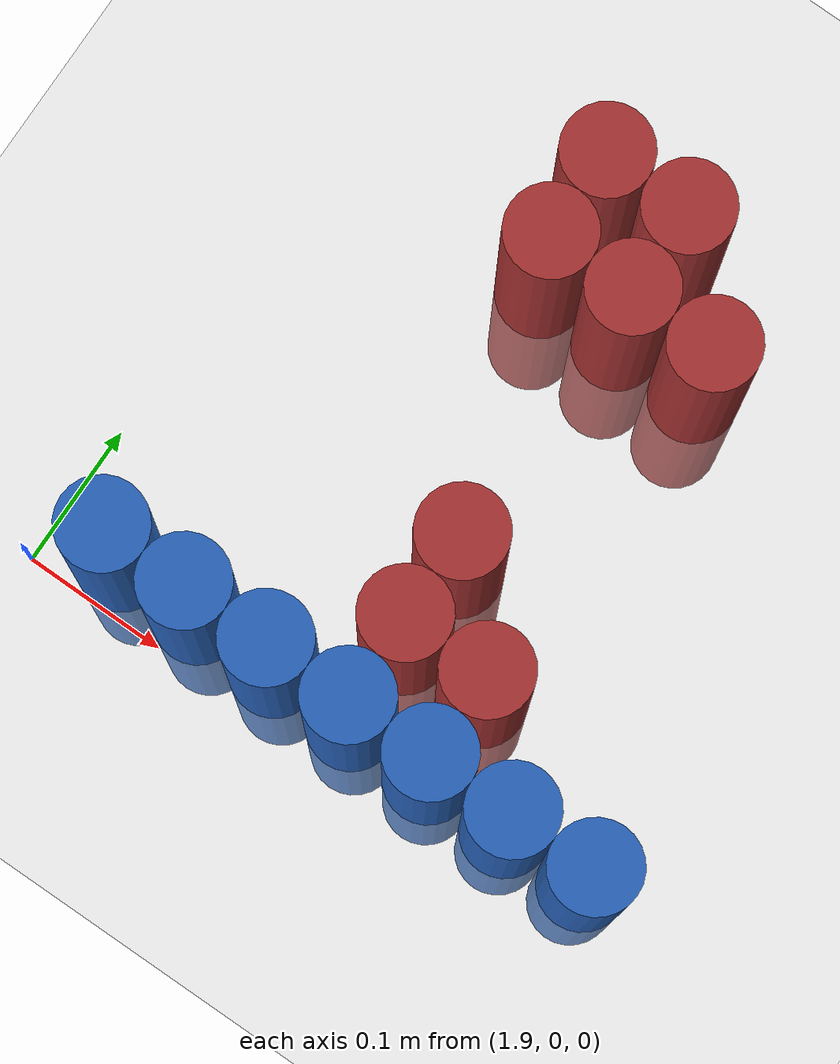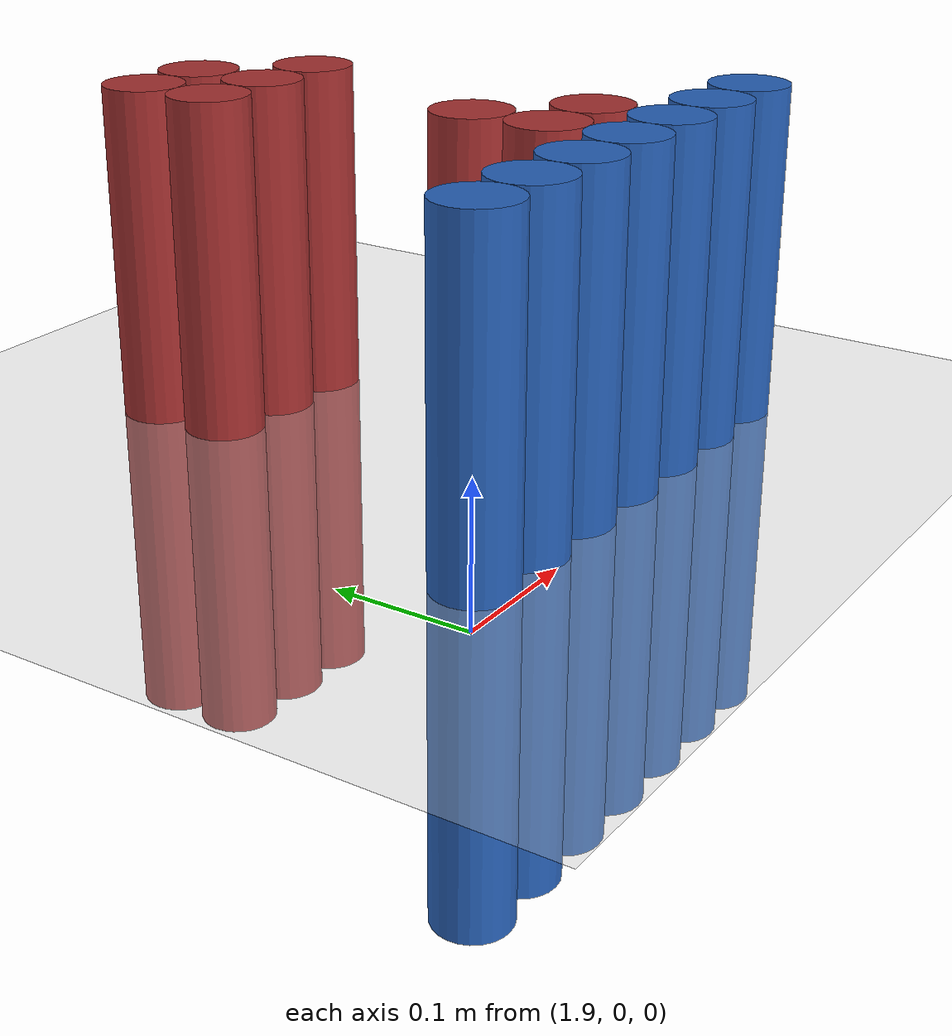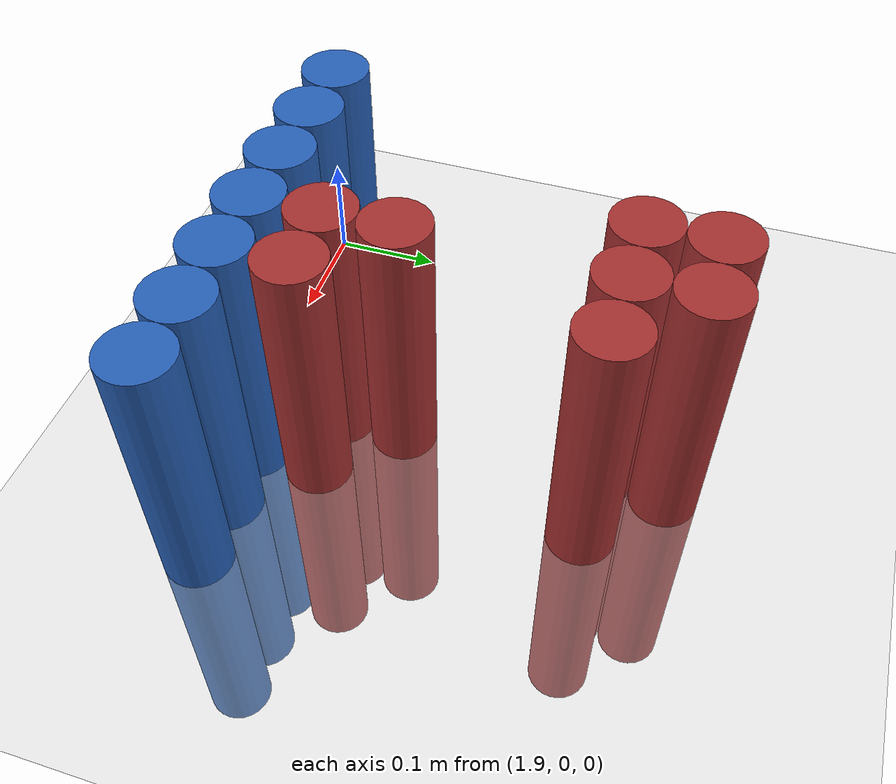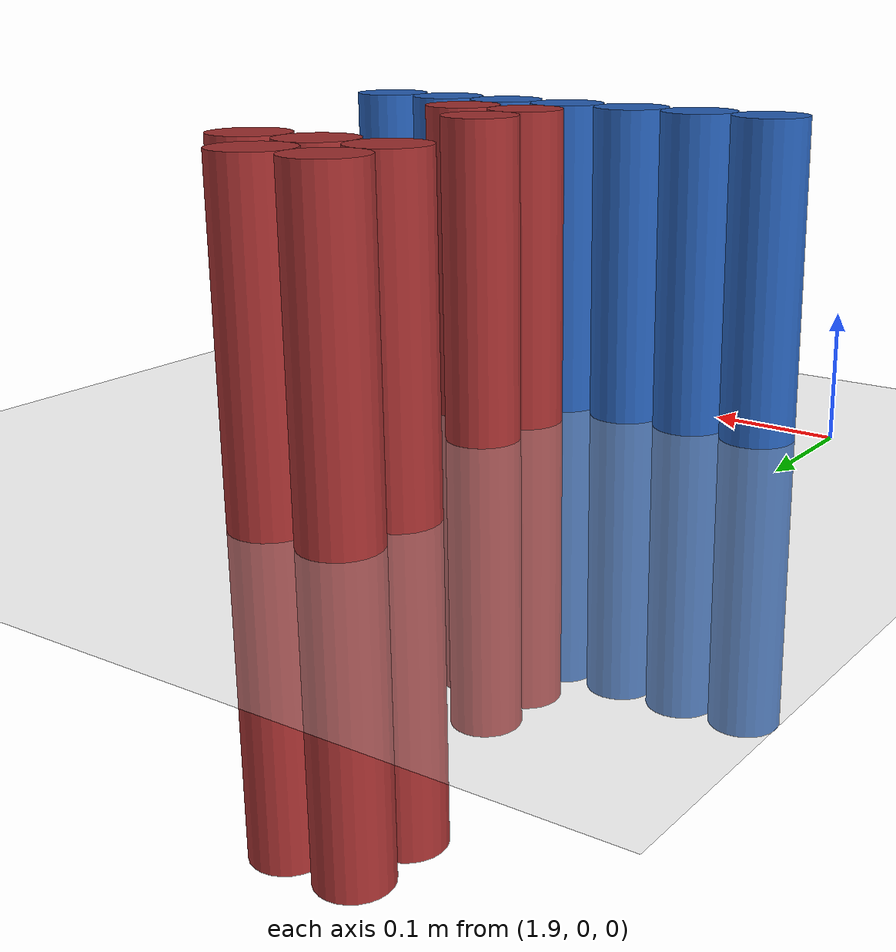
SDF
<sdf version="1.6">
 <world name="default">
  <model name="ground_plane">
   <static>1</static>
   <link name="link">
    <collision name="collision">
     <geometry><plane><normal>0 0 1</normal><size>100 100</size></plane></geometry>
     <surface><friction><ode><mu>100</mu><mu2>50</mu2></ode></friction></surface>
    </collision>
    <visual name="visual">
     <cast_shadows>0</cast_shadows>
     <geometry><plane><normal>0 0 1</normal><size>100 100</size></plane></geometry>
     <material>
      <script><uri>file://media/materials/scripts/gazebo.material</uri><name>Gazebo/Grey</name></script>
     </material>
    </visual>
   </link>
  </model>
  <model name="unit_cylinder_91">
   <static>1</static>
   <pose>1.950000 0.030000 0.000000 0.000000 0.000000 0.000000</pose>
   <link name="link">
    <inertial>
     <mass>1</mass>
     <inertia><ixx>0.145833</ixx><ixy>0</ixy><ixz>0</ixz><iyy>0.145833</iyy><iyz>0</iyz><izz>0.125</izz></inertia>
    </inertial>
    <collision name="collision">
     <geometry><cylinder><radius>0.030000</radius><length>0.5</length></cylinder></geometry>
    </collision>
    <visual name="visual">
     <geometry><cylinder><radius>0.030000</radius><length>0.5</length></cylinder></geometry>
     <material>
      <ambient>0.152000 0.379000 0.720000 1</ambient>
      <diffuse>0.152000 0.379000 0.720000 1</diffuse>
     </material>
     <material>
      <script><name>Gazebo/Grey</name><uri>file://media/materials/scripts/gazebo.material</uri></script>
     </material>
    </visual>
   </link>
  </model>
  <model name="unit_cylinder_93">
   <static>1</static>
   <pose>2.010000 0.030000 0.000000 0.000000 0.000000 0.000000</pose>
   <link name="link">
    <inertial>
     <mass>1</mass>
     <inertia><ixx>0.145833</ixx><ixy>0</ixy><ixz>0</ixz><iyy>0.145833</iyy><iyz>0</iyz><izz>0.125</izz></inertia>
    </inertial>
    <collision name="collision">
     <geometry><cylinder><radius>0.030000</radius><length>0.5</length></cylinder></geometry>
    </collision>
    <visual name="visual">
     <geometry><cylinder><radius>0.030000</radius><length>0.5</length></cylinder></geometry>
     <material>
      <ambient>0.152000 0.379000 0.720000 1</ambient>
      <diffuse>0.152000 0.379000 0.720000 1</diffuse>
     </material>
     <material>
      <script><name>Gazebo/Grey</name><uri>file://media/materials/scripts/gazebo.material</uri></script>
     </material>
    </visual>
   </link>
  </model>
  <model name="unit_cylinder_180">
   <static>1</static>
   <pose>2.070000 0.390000 0.000000 0.000000 0.000000 0.000000</pose>
   <link name="link">
    <inertial>
     <mass>1</mass>
     <inertia><ixx>0.145833</ixx><ixy>0</ixy><ixz>0</ixz><iyy>0.145833</iyy><iyz>0</iyz><izz>0.125</izz></inertia>
    </inertial>
    <collision name="collision">
     <geometry><cylinder><radius>0.030000</radius><length>0.5</length></cylinder></geometry>
    </collision>
    <visual name="visual">
     <geometry><cylinder><radius>0.030000</radius><length>0.5</length></cylinder></geometry>
     <material>
      <ambient>0.648000 0.192000 0.192000 1</ambient>
      <diffuse>0.648000 0.192000 0.192000 1</diffuse>
     </material>
     <material>
      <script><name>Gazebo/Grey</name><uri>file://media/materials/scripts/gazebo.material</uri></script>
     </material>
    </visual>
   </link>
  </model>
  <model name="unit_cylinder_181">
   <static>1</static>
   <pose>2.130000 0.390000 0.000000 0.000000 0.000000 0.000000</pose>
   <link name="link">
    <inertial>
     <mass>1</mass>
     <inertia><ixx>0.145833</ixx><ixy>0</ixy><ixz>0</ixz><iyy>0.145833</iyy><iyz>0</iyz><izz>0.125</izz></inertia>
    </inertial>
    <collision name="collision">
     <geometry><cylinder><radius>0.030000</radius><length>0.5</length></cylinder></geometry>
    </collision>
    <visual name="visual">
     <geometry><cylinder><radius>0.030000</radius><length>0.5</length></cylinder></geometry>
     <material>
      <ambient>0.648000 0.192000 0.192000 1</ambient>
      <diffuse>0.648000 0.192000 0.192000 1</diffuse>
     </material>
     <material>
      <script><name>Gazebo/Grey</name><uri>file://media/materials/scripts/gazebo.material</uri></script>
     </material>
    </visual>
   </link>
  </model>
  <model name="unit_cylinder_186">
   <static>1</static>
   <pose>2.070000 0.330000 0.000000 0.000000 0.000000 0.000000</pose>
   <link name="link">
    <inertial>
     <mass>1</mass>
     <inertia><ixx>0.145833</ixx><ixy>0</ixy><ixz>0</ixz><iyy>0.145833</iyy><iyz>0</iyz><izz>0.125</izz></inertia>
    </inertial>
    <collision name="collision">
     <geometry><cylinder><radius>0.030000</radius><length>0.5</length></cylinder></geometry>
    </collision>
    <visual name="visual">
     <geometry><cylinder><radius>0.030000</radius><length>0.5</length></cylinder></geometry>
     <material>
      <ambient>0.648000 0.192000 0.192000 1</ambient>
      <diffuse>0.648000 0.192000 0.192000 1</diffuse>
     </material>
     <material>
      <script><name>Gazebo/Grey</name><uri>file://media/materials/scripts/gazebo.material</uri></script>
     </material>
    </visual>
   </link>
  </model>
  <model name="unit_cylinder_187">
   <static>1</static>
   <pose>2.130000 0.330000 0.000000 0.000000 0.000000 0.000000</pose>
   <link name="link">
    <inertial>
     <mass>1</mass>
     <inertia><ixx>0.145833</ixx><ixy>0</ixy><ixz>0</ixz><iyy>0.145833</iyy><iyz>0</iyz><izz>0.125</izz></inertia>
    </inertial>
    <collision name="collision">
     <geometry><cylinder><radius>0.030000</radius><length>0.5</length></cylinder></geometry>
    </collision>
    <visual name="visual">
     <geometry><cylinder><radius>0.030000</radius><length>0.5</length></cylinder></geometry>
     <material>
      <ambient>0.648000 0.192000 0.192000 1</ambient>
      <diffuse>0.648000 0.192000 0.192000 1</diffuse>
     </material>
     <material>
      <script><name>Gazebo/Grey</name><uri>file://media/materials/scripts/gazebo.material</uri></script>
     </material>
    </visual>
   </link>
  </model>
  <model name="unit_cylinder_188">
   <static>1</static>
   <pose>2.190000 0.330000 0.000000 0.000000 0.000000 0.000000</pose>
   <link name="link">
    <inertial>
     <mass>1</mass>
     <inertia><ixx>0.145833</ixx><ixy>0</ixy><ixz>0</ixz><iyy>0.145833</iyy><iyz>0</iyz><izz>0.125</izz></inertia>
    </inertial>
    <collision name="collision">
     <geometry><cylinder><radius>0.030000</radius><length>0.5</length></cylinder></geometry>
    </collision>
    <visual name="visual">
     <geometry><cylinder><radius>0.030000</radius><length>0.5</length></cylinder></geometry>
     <material>
      <ambient>0.648000 0.192000 0.192000 1</ambient>
      <diffuse>0.648000 0.192000 0.192000 1</diffuse>
     </material>
     <material>
      <script><name>Gazebo/Grey</name><uri>file://media/materials/scripts/gazebo.material</uri></script>
     </material>
    </visual>
   </link>
  </model>
  <model name="unit_cylinder_200">
   <static>1</static>
   <pose>2.130000 0.150000 0.000000 0.000000 0.000000 0.000000</pose>
   <link name="link">
    <inertial>
     <mass>1</mass>
     <inertia><ixx>0.145833</ixx><ixy>0</ixy><ixz>0</ixz><iyy>0.145833</iyy><iyz>0</iyz><izz>0.125</izz></inertia>
    </inertial>
    <collision name="collision">
     <geometry><cylinder><radius>0.030000</radius><length>0.5</length></cylinder></geometry>
    </collision>
    <visual name="visual">
     <geometry><cylinder><radius>0.030000</radius><length>0.5</length></cylinder></geometry>
     <material>
      <ambient>0.648000 0.192000 0.192000 1</ambient>
      <diffuse>0.648000 0.192000 0.192000 1</diffuse>
     </material>
     <material>
      <script><name>Gazebo/Grey</name><uri>file://media/materials/scripts/gazebo.material</uri></script>
     </material>
    </visual>
   </link>
  </model>
  <model name="unit_cylinder_204">
   <static>1</static>
   <pose>2.130000 0.090000 0.000000 0.000000 0.000000 0.000000</pose>
   <link name="link">
    <inertial>
     <mass>1</mass>
     <inertia><ixx>0.145833</ixx><ixy>0</ixy><ixz>0</ixz><iyy>0.145833</iyy><iyz>0</iyz><izz>0.125</izz></inertia>
    </inertial>
    <collision name="collision">
     <geometry><cylinder><radius>0.030000</radius><length>0.5</length></cylinder></geometry>
    </collision>
    <visual name="visual">
     <geometry><cylinder><radius>0.030000</radius><length>0.5</length></cylinder></geometry>
     <material>
      <ambient>0.648000 0.192000 0.192000 1</ambient>
      <diffuse>0.648000 0.192000 0.192000 1</diffuse>
     </material>
     <material>
      <script><name>Gazebo/Grey</name><uri>file://media/materials/scripts/gazebo.material</uri></script>
     </material>
    </visual>
   </link>
  </model>
  <model name="unit_cylinder_205">
   <static>1</static>
   <pose>2.190000 0.090000 0.000000 0.000000 0.000000 0.000000</pose>
   <link name="link">
    <inertial>
     <mass>1</mass>
     <inertia><ixx>0.145833</ixx><ixy>0</ixy><ixz>0</ixz><iyy>0.145833</iyy><iyz>0</iyz><izz>0.125</izz></inertia>
    </inertial>
    <collision name="collision">
     <geometry><cylinder><radius>0.030000</radius><length>0.5</length></cylinder></geometry>
    </collision>
    <visual name="visual">
     <geometry><cylinder><radius>0.030000</radius><length>0.5</length></cylinder></geometry>
     <material>
      <ambient>0.648000 0.192000 0.192000 1</ambient>
      <diffuse>0.648000 0.192000 0.192000 1</diffuse>
     </material>
     <material>
      <script><name>Gazebo/Grey</name><uri>file://media/materials/scripts/gazebo.material</uri></script>
     </material>
    </visual>
   </link>
  </model>
  <model name="unit_cylinder_214">
   <static>1</static>
   <pose>2.070000 0.030000 0.000000 0.000000 0.000000 0.000000</pose>
   <link name="link">
    <inertial>
     <mass>1</mass>
     <inertia><ixx>0.145833</ixx><ixy>0</ixy><ixz>0</ixz><iyy>0.145833</iyy><iyz>0</iyz><izz>0.125</izz></inertia>
    </inertial>
    <collision name="collision">
     <geometry><cylinder><radius>0.030000</radius><length>0.5</length></cylinder></geometry>
    </collision>
    <visual name="visual">
     <geometry><cylinder><radius>0.030000</radius><length>0.5</length></cylinder></geometry>
     <material>
      <ambient>0.152000 0.379000 0.720000 1</ambient>
      <diffuse>0.152000 0.379000 0.720000 1</diffuse>
     </material>
     <material>
      <script><name>Gazebo/Grey</name><uri>file://media/materials/scripts/gazebo.material</uri></script>
     </material>
    </visual>
   </link>
  </model>
  <model name="unit_cylinder_215">
   <static>1</static>
   <pose>2.130000 0.030000 0.000000 0.000000 0.000000 0.000000</pose>
   <link name="link">
    <inertial>
     <mass>1</mass>
     <inertia><ixx>0.145833</ixx><ixy>0</ixy><ixz>0</ixz><iyy>0.145833</iyy><iyz>0</iyz><izz>0.125</izz></inertia>
    </inertial>
    <collision name="collision">
     <geometry><cylinder><radius>0.030000</radius><length>0.5</length></cylinder></geometry>
    </collision>
    <visual name="visual">
     <geometry><cylinder><radius>0.030000</radius><length>0.5</length></cylinder></geometry>
     <material>
      <ambient>0.152000 0.379000 0.720000 1</ambient>
      <diffuse>0.152000 0.379000 0.720000 1</diffuse>
     </material>
     <material>
      <script><name>Gazebo/Grey</name><uri>file://media/materials/scripts/gazebo.material</uri></script>
     </material>
    </visual>
   </link>
  </model>
  <model name="unit_cylinder_216">
   <static>1</static>
   <pose>2.190000 0.030000 0.000000 0.000000 0.000000 0.000000</pose>
   <link name="link">
    <inertial>
     <mass>1</mass>
     <inertia><ixx>0.145833</ixx><ixy>0</ixy><ixz>0</ixz><iyy>0.145833</iyy><iyz>0</iyz><izz>0.125</izz></inertia>
    </inertial>
    <collision name="collision">
     <geometry><cylinder><radius>0.030000</radius><length>0.5</length></cylinder></geometry>
    </collision>
    <visual name="visual">
     <geometry><cylinder><radius>0.030000</radius><length>0.5</length></cylinder></geometry>
     <material>
      <ambient>0.152000 0.379000 0.720000 1</ambient>
      <diffuse>0.152000 0.379000 0.720000 1</diffuse>
     </material>
     <material>
      <script><name>Gazebo/Grey</name><uri>file://media/materials/scripts/gazebo.material</uri></script>
     </material>
    </visual>
   </link>
  </model>
  <model name="unit_cylinder_217">
   <static>1</static>
   <pose>2.250000 0.030000 0.000000 0.000000 0.000000 0.000000</pose>
   <link name="link">
    <inertial>
     <mass>1</mass>
     <inertia><ixx>0.145833</ixx><ixy>0</ixy><ixz>0</ixz><iyy>0.145833</iyy><iyz>0</iyz><izz>0.125</izz></inertia>
    </inertial>
    <collision name="collision">
     <geometry><cylinder><radius>0.030000</radius><length>0.5</length></cylinder></geometry>
    </collision>
    <visual name="visual">
     <geometry><cylinder><radius>0.030000</radius><length>0.5</length></cylinder></geometry>
     <material>
      <ambient>0.152000 0.379000 0.720000 1</ambient>
      <diffuse>0.152000 0.379000 0.720000 1</diffuse>
     </material>
     <material>
      <script><name>Gazebo/Grey</name><uri>file://media/materials/scripts/gazebo.material</uri></script>
     </material>
    </visual>
   </link>
  </model>
  <model name="unit_cylinder_218">
   <static>1</static>
   <pose>2.310000 0.030000 0.000000 0.000000 0.000000 0.000000</pose>
   <link name="link">
    <inertial>
     <mass>1</mass>
     <inertia><ixx>0.145833</ixx><ixy>0</ixy><ixz>0</ixz><iyy>0.145833</iyy><iyz>0</iyz><izz>0.125</izz></inertia>
    </inertial>
    <collision name="collision">
     <geometry><cylinder><radius>0.030000</radius><length>0.5</length></cylinder></geometry>
    </collision>
    <visual name="visual">
     <geometry><cylinder><radius>0.030000</radius><length>0.5</length></cylinder></geometry>
     <material>
      <ambient>0.152000 0.379000 0.720000 1</ambient>
      <diffuse>0.152000 0.379000 0.720000 1</diffuse>
     </material>
     <material>
      <script><name>Gazebo/Grey</name><uri>file://media/materials/scripts/gazebo.material</uri></script>
     </material>
    </visual>
   </link>
  </model>
 </world>
</sdf>
